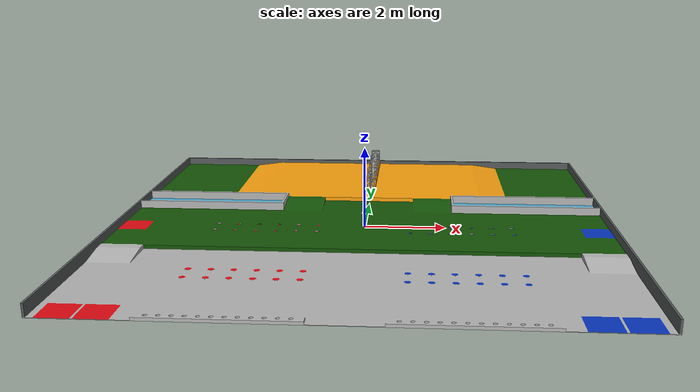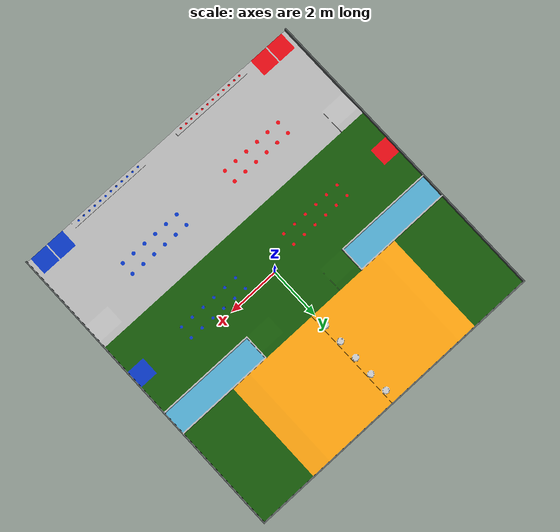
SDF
<sdf version='1.7'>
  <model name='arena'>
    <link name='base_link'>
      <inertial>
        <pose>0 0.075546 -2.07458 0 -0 0</pose>
        <mass>13931.5</mass>
        <inertia>
          <ixx>19802.3</ixx>
          <ixy>-6.65987e-07</ixy>
          <ixz>-1.17319e-05</ixz>
          <iyy>173916</iyy>
          <iyz>77.5555</iyz>
          <izz>154201</izz>
        </inertia>
      </inertial>
      <collision name='base_link_collision'>
        <pose>0 0 0 0 -0 0</pose>
        <geometry>
          <mesh>
            <scale>1 1 1</scale>
            <uri>model://arena/meshes/base_link.dae</uri>
          </mesh>
        </geometry>
      </collision>
      <visual name='base_link_visual'>
        <pose>0 0 0 0 -0 0</pose>
        <geometry>
          <mesh>
            <scale>1 1 1</scale>
            <uri>model://arena/meshes/base_link.dae</uri>
          </mesh>
        </geometry>
      </visual>
    </link>
  </model>
</sdf>
